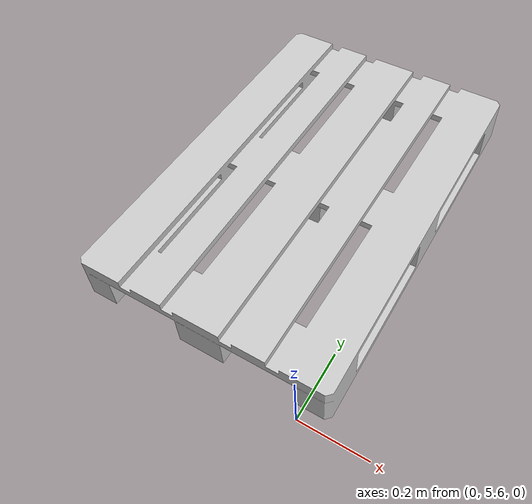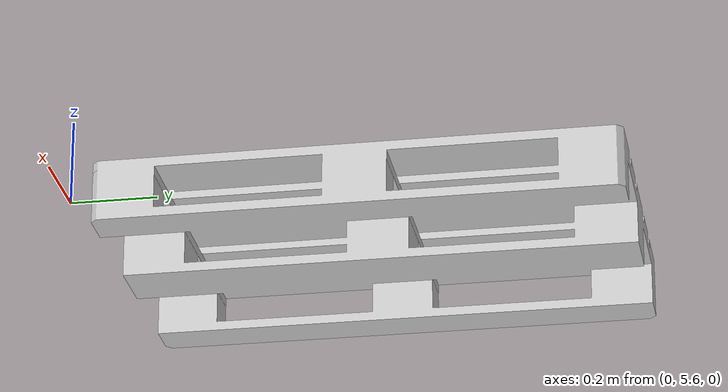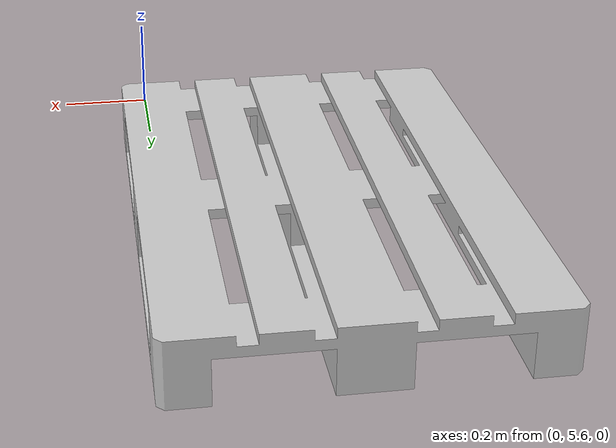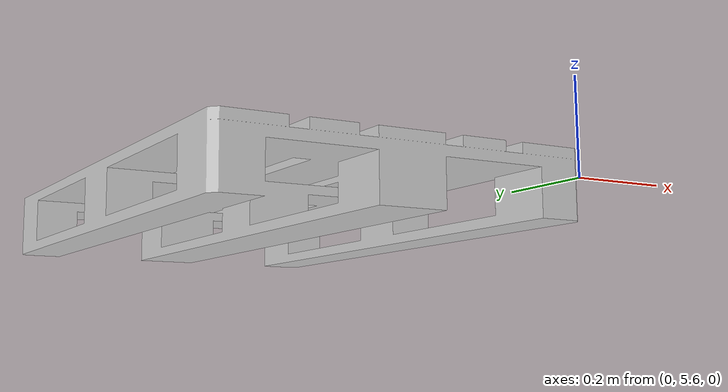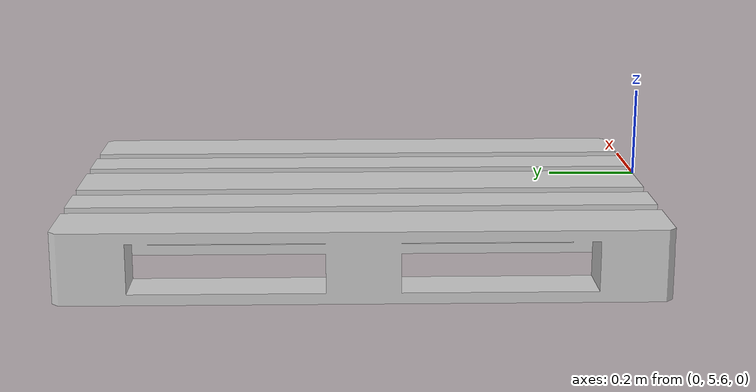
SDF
<?xml version='1.0'?>
<sdf version='1.6'>
  <model name='euro_pallet'>
    <model name='euro_pallet'>
      <link name='link'>
        <pose frame=''>0 0 0 0 -0 0</pose>
        <inertial>
          <mass>20</mass>
          <inertia>
            <ixx>2.43</ixx>
            <ixy>0</ixy>
            <ixz>0</ixz>
            <iyy>1.1</iyy>
            <iyz>0</iyz>
            <izz>3.47</izz>
          </inertia>
        </inertial>
        <collision name='collision'>
          <pose frame=''>0 0 0.05 0 -0 0</pose>
          <geometry>
            <mesh>
              <uri>model://euro_pallet/meshes/pallet.dae</uri>
              <scale>0.1 0.1 0.1</scale>
            </mesh>
          </geometry>
        </collision>
        <visual name='visual'>
          <pose frame=''>0 0 0.05 0 -0 0</pose>
          <geometry>
            <mesh>
              <uri>model://euro_pallet/meshes/pallet.dae</uri>
              <scale>0.1 0.1 0.1</scale>
            </mesh>
          </geometry>
        </visual>
      </link>
      <pose frame=''>-0.337095 6.2603 3e-06 0 -0 0</pose>
    </model>
    <static>0</static>
    <allow_auto_disable>1</allow_auto_disable>
  </model>
</sdf>
